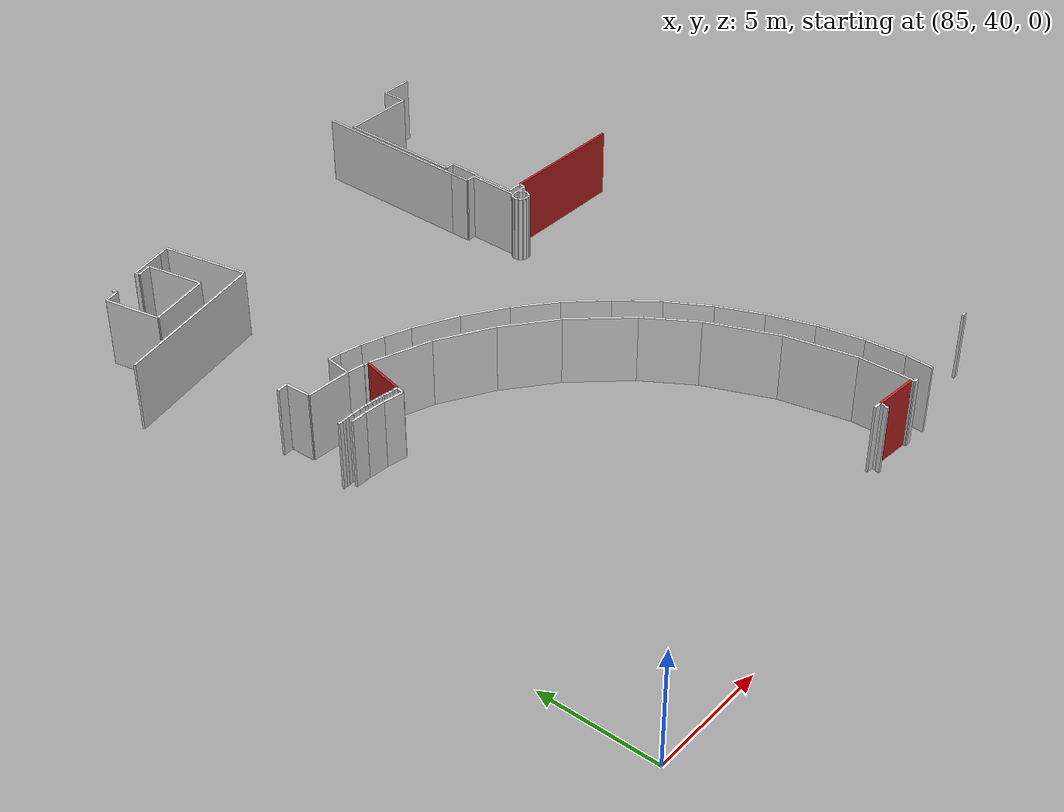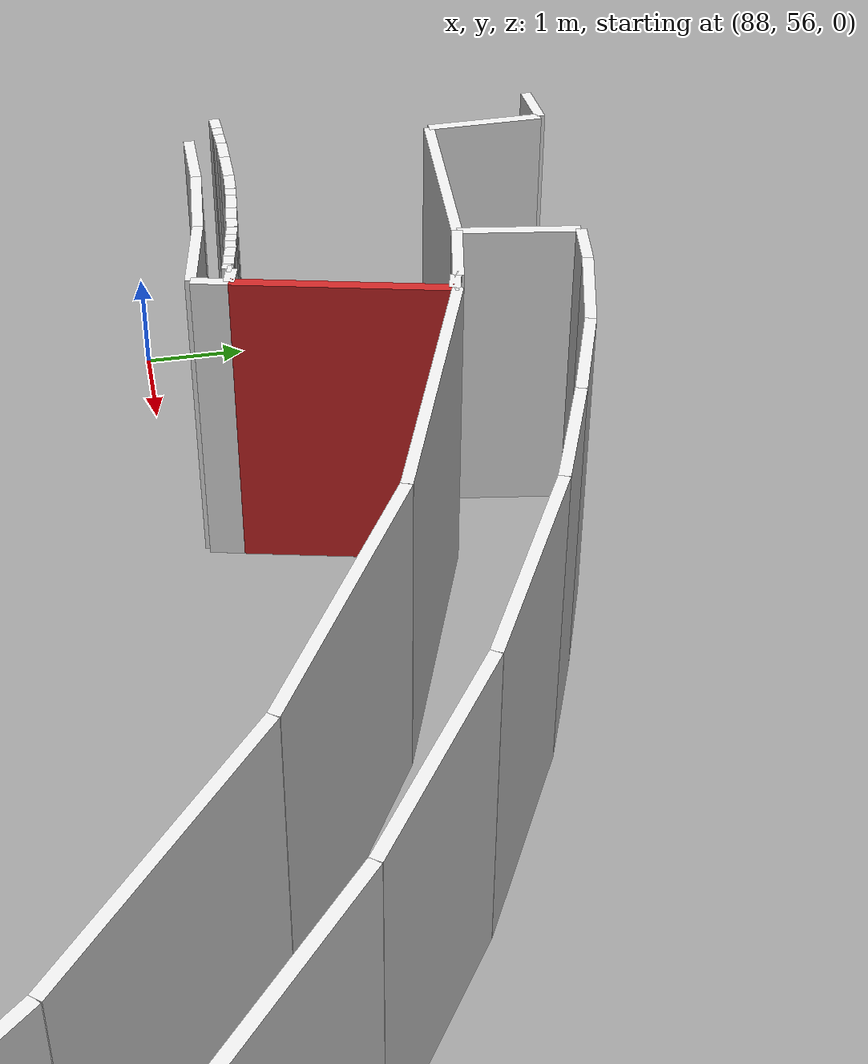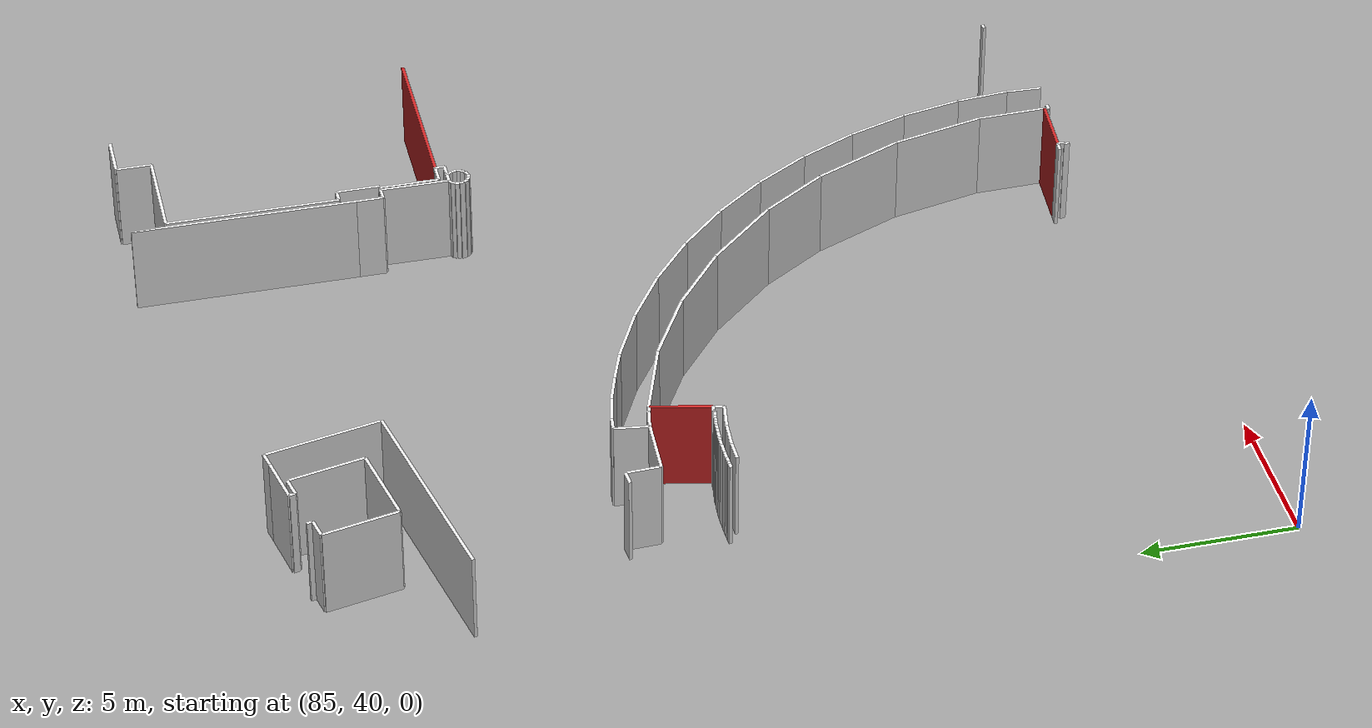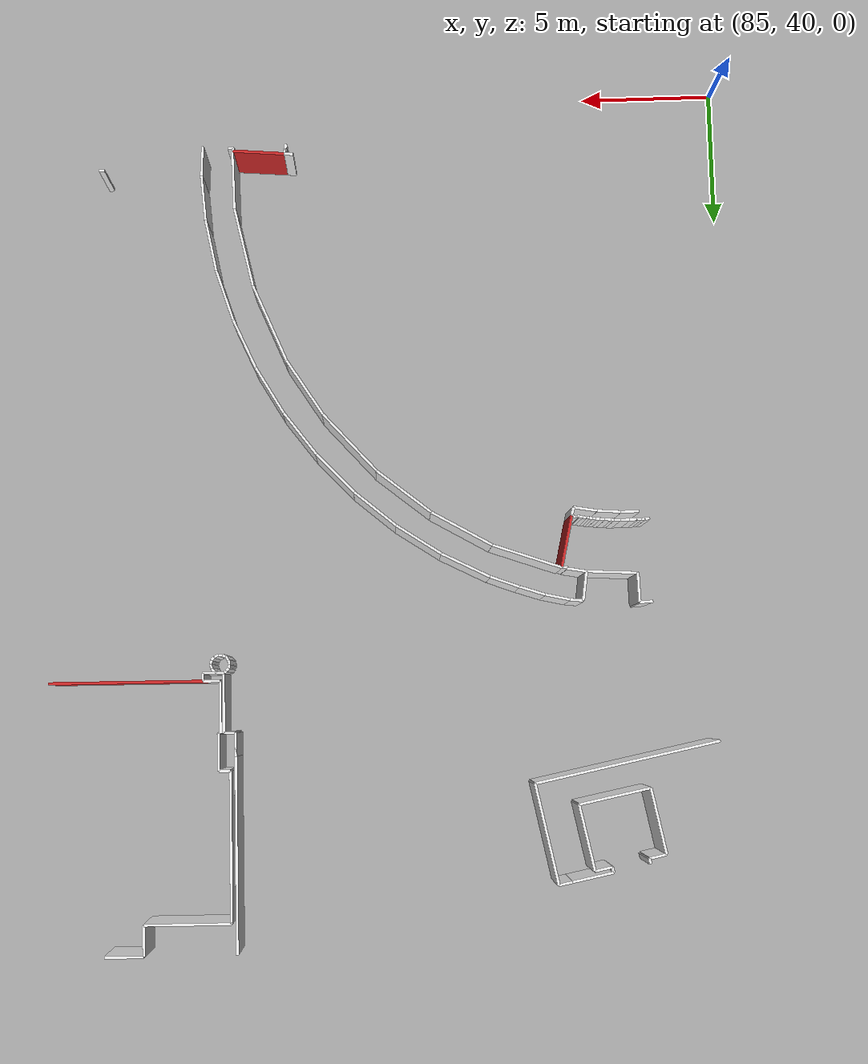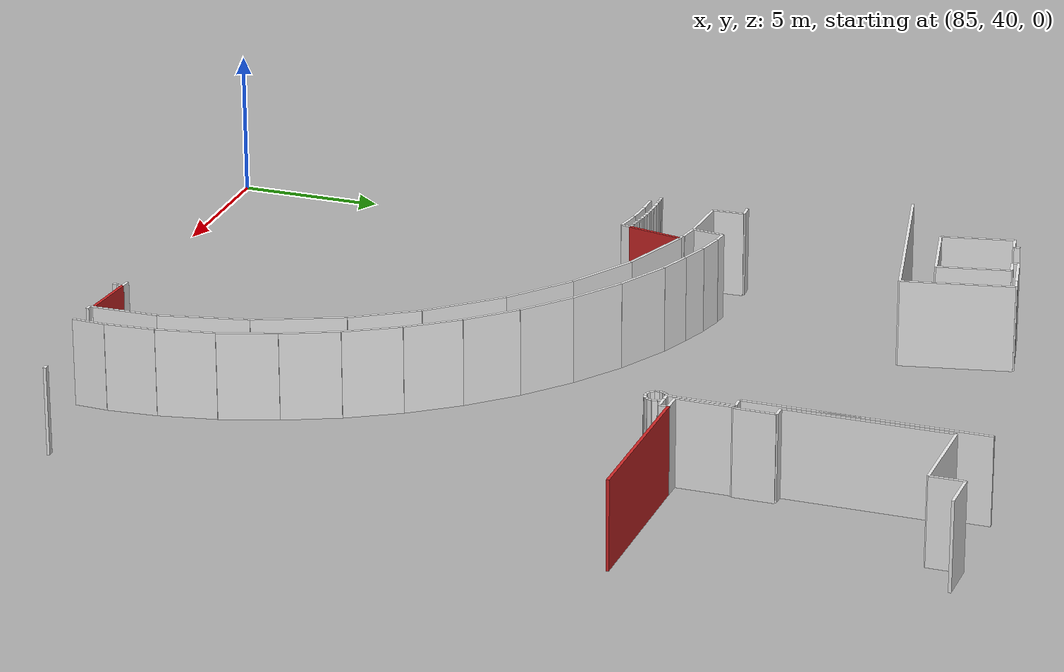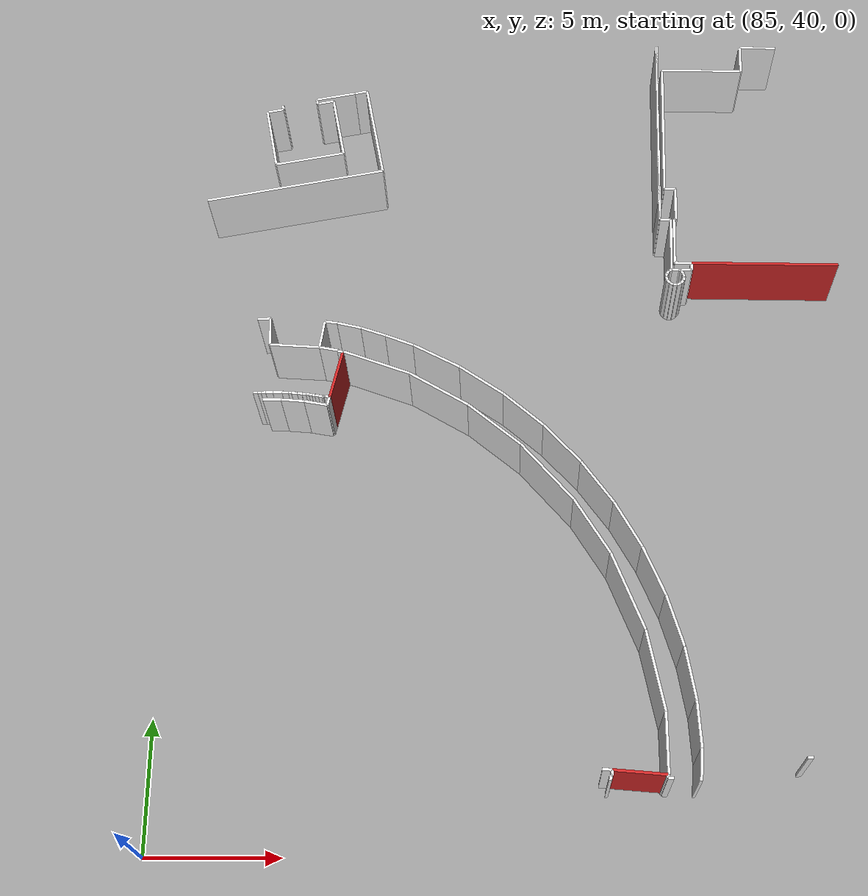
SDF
<sdf version="1.6">
 <world name="default">
  <model name="wall_108.0_62.3">
   <static>true</static>
   <pose>107.99499999999534 62.34499999997206 1.5 0 0 -0.012258580285916719</pose>
   <link name="link">
    <visual name="visual">
     <geometry><box><size>5.710429055644689 0.1 3</size></box></geometry>
     <material>
      <script><uri>file://media/materials/scripts/gazebo.material</uri><name>Gazebo/Red</name></script>
     </material>
    </visual>
   </link>
  </model>
  <model name="wall_102.6_42.5">
   <static>true</static>
   <pose>102.60500000001048 42.48999999999069 1.5 0 0 -0.08271241528552369</pose>
   <link name="link">
    <visual name="visual">
     <geometry><box><size>1.9366207682124321 0.1 3</size></box></geometry>
     <material>
      <script><uri>file://media/materials/scripts/gazebo.material</uri><name>Gazebo/Red</name></script>
     </material>
    </visual>
   </link>
  </model>
  <model name="wall_91.5_57.6">
   <static>true</static>
   <pose>91.49500000002445 57.58999999985099 1.5 0 0 -1.795651920405678</pose>
   <link name="link">
    <visual name="visual">
     <geometry><box><size>1.9285486770039746 0.1 3</size></box></geometry>
     <material>
      <script><uri>file://media/materials/scripts/gazebo.material</uri><name>Gazebo/Red</name></script>
     </material>
    </visual>
   </link>
  </model>
  <model name="wall_108.2_72.3">
   <static>true</static>
   <pose>108.21499999999651 72.34000000008382 1.5 0 0 3.127800424740227</pose>
   <link name="link">
    <visual name="visual">
     <geometry><box><size>1.4501379244866694 0.1 3</size></box></geometry>
     <material>
      <script><uri>file://media/materials/scripts/gazebo.material</uri><name>Gazebo/White</name></script>
     </material>
    </visual>
   </link>
  </model>
  <model name="wall_107.5_71.8">
   <static>true</static>
   <pose>107.48499999998603 71.78000000002794 1.5 0 0 -1.579568031646505</pose>
   <link name="link">
    <visual name="visual">
     <geometry><box><size>1.1400438589359028 0.1 3</size></box></geometry>
     <material>
      <script><uri>file://media/materials/scripts/gazebo.material</uri><name>Gazebo/White</name></script>
     </material>
    </visual>
   </link>
  </model>
  <model name="wall_105.9_71.2">
   <static>true</static>
   <pose>105.875 71.22999999998137 1.5 0 0 3.1291322393040306</pose>
   <link name="link">
    <visual name="visual">
     <geometry><box><size>3.2102492114731245 0.1 3</size></box></geometry>
     <material>
      <script><uri>file://media/materials/scripts/gazebo.material</uri><name>Gazebo/White</name></script>
     </material>
    </visual>
   </link>
  </model>
  <model name="wall_104.2_68.5">
   <static>true</static>
   <pose>104.23000000001048 68.47500000009313 1.5 0 0 -1.585209743017202</pose>
   <link name="link">
    <visual name="visual">
     <geometry><box><size>5.550576546444078 0.1 3</size></box></geometry>
     <material>
      <script><uri>file://media/materials/scripts/gazebo.material</uri><name>Gazebo/White</name></script>
     </material>
    </visual>
   </link>
  </model>
  <model name="wall_104.4_65.7">
   <static>true</static>
   <pose>104.40499999999884 65.69500000006519 1.5 0 0 -0.023251623373661365</pose>
   <link name="link">
    <visual name="visual">
     <geometry><box><size>0.430116263350778 0.1 3</size></box></geometry>
     <material>
      <script><uri>file://media/materials/scripts/gazebo.material</uri><name>Gazebo/White</name></script>
     </material>
    </visual>
   </link>
  </model>
  <model name="wall_104.6_65.0">
   <static>true</static>
   <pose>104.60999999998603 64.99499999987893 1.5 0 0 -1.5851838231958704</pose>
   <link name="link">
    <visual name="visual">
     <geometry><box><size>1.390143877576424 0.1 3</size></box></geometry>
     <material>
      <script><uri>file://media/materials/scripts/gazebo.material</uri><name>Gazebo/White</name></script>
     </material>
    </visual>
   </link>
  </model>
  <model name="wall_104.6_64.3">
   <static>true</static>
   <pose>104.55999999999767 64.29999999981374 1.5 0 0 3.141592653589793</pose>
   <link name="link">
    <visual name="visual">
     <geometry><box><size>0.07999999995809048 0.1 3</size></box></geometry>
     <material>
      <script><uri>file://media/materials/scripts/gazebo.material</uri><name>Gazebo/White</name></script>
     </material>
    </visual>
   </link>
  </model>
  <model name="wall_104.5_63.3">
   <static>true</static>
   <pose>104.50500000000466 63.34499999997206 1.5 0 0 -1.5865018416432637</pose>
   <link name="link">
    <visual name="visual">
     <geometry><box><size>1.9102355872488803 0.1 3</size></box></geometry>
     <material>
      <script><uri>file://media/materials/scripts/gazebo.material</uri><name>Gazebo/White</name></script>
     </material>
    </visual>
   </link>
  </model>
  <model name="wall_104.8_62.4">
   <static>true</static>
   <pose>104.81500000000233 62.38500000000931 1.5 0 0 -0.015383402152485081</pose>
   <link name="link">
    <visual name="visual">
     <geometry><box><size>0.6500769185528055 0.1 3</size></box></geometry>
     <material>
      <script><uri>file://media/materials/scripts/gazebo.material</uri><name>Gazebo/White</name></script>
     </material>
    </visual>
   </link>
  </model>
  <model name="wall_101.6_42.3">
   <static>true</static>
   <pose>101.5800000000163 42.29000000003725 1.5 0 0 1.4601391053370611</pose>
   <link name="link">
    <visual name="visual">
     <geometry><box><size>0.18110770246860486 0.1 3</size></box></geometry>
     <material>
      <script><uri>file://media/materials/scripts/gazebo.material</uri><name>Gazebo/White</name></script>
     </material>
    </visual>
   </link>
  </model>
  <model name="wall_101.6_42.4">
   <static>true</static>
   <pose>101.61000000001513 42.375 1.5 0 0 -0.24497865799089408</pose>
   <link name="link">
    <visual name="visual">
     <geometry><box><size>0.04123105618163657 0.1 3</size></box></geometry>
     <material>
      <script><uri>file://media/materials/scripts/gazebo.material</uri><name>Gazebo/White</name></script>
     </material>
    </visual>
   </link>
  </model>
  <model name="wall_101.6_42.5">
   <static>true</static>
   <pose>101.63500000000931 42.46999999997206 1.5 0 0 1.520837930956829</pose>
   <link name="link">
    <visual name="visual">
     <geometry><box><size>0.20024984366642476 0.1 3</size></box></geometry>
     <material>
      <script><uri>file://media/materials/scripts/gazebo.material</uri><name>Gazebo/White</name></script>
     </material>
    </visual>
   </link>
  </model>
  <model name="wall_103.6_42.4">
   <static>true</static>
   <pose>103.56500000000233 42.35000000009313 1.5 0 0 -1.6539375586833378</pose>
   <link name="link">
    <visual name="visual">
     <geometry><box><size>0.12041594590006904 0.1 3</size></box></geometry>
     <material>
      <script><uri>file://media/materials/scripts/gazebo.material</uri><name>Gazebo/White</name></script>
     </material>
    </visual>
   </link>
  </model>
  <model name="wall_103.7_42.3">
   <static>true</static>
   <pose>103.66500000000815 42.28499999991618 1.5 0 0 -0.0475831044226998</pose>
   <link name="link">
    <visual name="visual">
     <geometry><box><size>0.21023796044873502 0.1 3</size></box></geometry>
     <material>
      <script><uri>file://media/materials/scripts/gazebo.material</uri><name>Gazebo/White</name></script>
     </material>
    </visual>
   </link>
  </model>
  <model name="wall_91.1_56.7">
   <static>true</static>
   <pose>91.07500000001164 56.68000000016764 1.5 0 0 1.3258176636680326</pose>
   <link name="link">
    <visual name="visual">
     <geometry><box><size>0.04123105629457602 0.1 3</size></box></geometry>
     <material>
      <script><uri>file://media/materials/scripts/gazebo.material</uri><name>Gazebo/White</name></script>
     </material>
    </visual>
   </link>
  </model>
  <model name="wall_91.2_56.7">
   <static>true</static>
   <pose>91.18000000002212 56.675000000046566 1.5 0 0 -0.24497866442797658</pose>
   <link name="link">
    <visual name="visual">
     <geometry><box><size>0.20615528135994066 0.1 3</size></box></geometry>
     <material>
      <script><uri>file://media/materials/scripts/gazebo.material</uri><name>Gazebo/White</name></script>
     </material>
    </visual>
   </link>
  </model>
  <model name="wall_91.6_58.6">
   <static>true</static>
   <pose>91.61000000001513 58.55499999993481 1.5 0 0 2.896613989161817</pose>
   <link name="link">
    <visual name="visual">
     <geometry><box><size>0.20615528135994066 0.1 3</size></box></geometry>
     <material>
      <script><uri>file://media/materials/scripts/gazebo.material</uri><name>Gazebo/White</name></script>
     </material>
    </visual>
   </link>
  </model>
  <model name="wall_91.5_58.6">
   <static>true</static>
   <pose>91.51500000001397 58.59000000008382 1.5 0 0 1.1071487177940904</pose>
   <link name="link">
    <visual name="visual">
     <geometry><box><size>0.022360679795822902 0.1 3</size></box></geometry>
     <material>
      <script><uri>file://media/materials/scripts/gazebo.material</uri><name>Gazebo/White</name></script>
     </material>
    </visual>
   </link>
  </model>
  <model name="wall_91.2_58.7">
   <static>true</static>
   <pose>91.16500000000815 58.66500000003725 1.5 0 0 2.960499997216104</pose>
   <link name="link">
    <visual name="visual">
     <geometry><box><size>0.7218032973052274 0.1 3</size></box></geometry>
     <material>
      <script><uri>file://media/materials/scripts/gazebo.material</uri><name>Gazebo/White</name></script>
     </material>
    </visual>
   </link>
  </model>
  <model name="wall_89.9_58.8">
   <static>true</static>
   <pose>89.85999999998603 58.78499999991618 1.5 0 0 3.083762470913302</pose>
   <link name="link">
    <visual name="visual">
     <geometry><box><size>1.90318154679468 0.1 3</size></box></geometry>
     <material>
      <script><uri>file://media/materials/scripts/gazebo.material</uri><name>Gazebo/White</name></script>
     </material>
    </visual>
   </link>
  </model>
  <model name="wall_88.5_56.8">
   <static>true</static>
   <pose>88.47000000000116 56.83499999996275 1.5 0 0 0.05549850400992342</pose>
   <link name="link">
    <visual name="visual">
     <geometry><box><size>0.18027756375382678 0.1 3</size></box></geometry>
     <material>
      <script><uri>file://media/materials/scripts/gazebo.material</uri><name>Gazebo/White</name></script>
     </material>
    </visual>
   </link>
  </model>
  <model name="wall_88.6_56.8">
   <static>true</static>
   <pose>88.625 56.83999999985099 1.5 0 0 0.0</pose>
   <link name="link">
    <visual name="visual">
     <geometry><box><size>0.1300000000046566 0.1 3</size></box></geometry>
     <material>
      <script><uri>file://media/materials/scripts/gazebo.material</uri><name>Gazebo/White</name></script>
     </material>
    </visual>
   </link>
  </model>
  <model name="wall_88.8_56.8">
   <static>true</static>
   <pose>88.77499999999418 56.84499999997206 1.5 0 0 0.0587558241408068</pose>
   <link name="link">
    <visual name="visual">
     <geometry><box><size>0.17029386365721316 0.1 3</size></box></geometry>
     <material>
      <script><uri>file://media/materials/scripts/gazebo.material</uri><name>Gazebo/White</name></script>
     </material>
    </visual>
   </link>
  </model>
  <model name="wall_89.0_56.9">
   <static>true</static>
   <pose>88.99499999999534 56.85000000009313 1.5 0 0 0.0</pose>
   <link name="link">
    <visual name="visual">
     <geometry><box><size>0.27000000001862645 0.1 3</size></box></geometry>
     <material>
      <script><uri>file://media/materials/scripts/gazebo.material</uri><name>Gazebo/White</name></script>
     </material>
    </visual>
   </link>
  </model>
  <model name="wall_89.3_56.9">
   <static>true</static>
   <pose>89.30499999999302 56.85000000009313 1.5 0 0 0.0</pose>
   <link name="link">
    <visual name="visual">
     <geometry><box><size>0.34999999997671694 0.1 3</size></box></geometry>
     <material>
      <script><uri>file://media/materials/scripts/gazebo.material</uri><name>Gazebo/White</name></script>
     </material>
    </visual>
   </link>
  </model>
  <model name="wall_89.6_56.8">
   <static>true</static>
   <pose>89.59999999997672 56.84499999997206 1.5 0 0 -0.04164258010738671</pose>
   <link name="link">
    <visual name="visual">
     <geometry><box><size>0.24020824299006172 0.1 3</size></box></geometry>
     <material>
      <script><uri>file://media/materials/scripts/gazebo.material</uri><name>Gazebo/White</name></script>
     </material>
    </visual>
   </link>
  </model>
  <model name="wall_89.8_56.8">
   <static>true</static>
   <pose>89.77999999999884 56.83499999996275 1.5 0 0 -0.08314123000171016</pose>
   <link name="link">
    <visual name="visual">
     <geometry><box><size>0.12041594582272691 0.1 3</size></box></geometry>
     <material>
      <script><uri>file://media/materials/scripts/gazebo.material</uri><name>Gazebo/White</name></script>
     </material>
    </visual>
   </link>
  </model>
  <model name="wall_90.0_56.8">
   <static>true</static>
   <pose>89.95000000001164 56.82000000006519 1.5 0 0 -0.0906598872961675</pose>
   <link name="link">
    <visual name="visual">
     <geometry><box><size>0.22090722031760665 0.1 3</size></box></geometry>
     <material>
      <script><uri>file://media/materials/scripts/gazebo.material</uri><name>Gazebo/White</name></script>
     </material>
    </visual>
   </link>
  </model>
  <model name="wall_90.1_56.8">
   <static>true</static>
   <pose>90.14999999999418 56.800000000046566 1.5 0 0 -0.11065722128037307</pose>
   <link name="link">
    <visual name="visual">
     <geometry><box><size>0.1811077027578631 0.1 3</size></box></geometry>
     <material>
      <script><uri>file://media/materials/scripts/gazebo.material</uri><name>Gazebo/White</name></script>
     </material>
    </visual>
   </link>
  </model>
  <model name="wall_90.3_56.8">
   <static>true</static>
   <pose>90.31500000000233 56.78499999991618 1.5 0 0 -0.06656816537267114</pose>
   <link name="link">
    <visual name="visual">
     <geometry><box><size>0.15033296382306774 0.1 3</size></box></geometry>
     <material>
      <script><uri>file://media/materials/scripts/gazebo.material</uri><name>Gazebo/White</name></script>
     </material>
    </visual>
   </link>
  </model>
  <model name="wall_90.5_56.8">
   <static>true</static>
   <pose>90.45000000001164 56.769999999785796 1.5 0 0 -0.16514867757194485</pose>
   <link name="link">
    <visual name="visual">
     <geometry><box><size>0.1216552506044333 0.1 3</size></box></geometry>
     <material>
      <script><uri>file://media/materials/scripts/gazebo.material</uri><name>Gazebo/White</name></script>
     </material>
    </visual>
   </link>
  </model>
  <model name="wall_90.6_56.8">
   <static>true</static>
   <pose>90.56500000000233 56.75 1.5 0 0 -0.17985349588092345</pose>
   <link name="link">
    <visual name="visual">
     <geometry><box><size>0.11180339878127696 0.1 3</size></box></geometry>
     <material>
      <script><uri>file://media/materials/scripts/gazebo.material</uri><name>Gazebo/White</name></script>
     </material>
    </visual>
   </link>
  </model>
  <model name="wall_90.7_56.7">
   <static>true</static>
   <pose>90.67499999998836 56.735000000102445 1.5 0 0 -0.0906598893954602</pose>
   <link name="link">
    <visual name="visual">
     <geometry><box><size>0.11045361017988281 0.1 3</size></box></geometry>
     <material>
      <script><uri>file://media/materials/scripts/gazebo.material</uri><name>Gazebo/White</name></script>
     </material>
    </visual>
   </link>
  </model>
  <model name="wall_90.8_56.7">
   <static>true</static>
   <pose>90.79999999998836 56.71500000008382 1.5 0 0 -0.2110933318030475</pose>
   <link name="link">
    <visual name="visual">
     <geometry><box><size>0.14317821060349267 0.1 3</size></box></geometry>
     <material>
      <script><uri>file://media/materials/scripts/gazebo.material</uri><name>Gazebo/White</name></script>
     </material>
    </visual>
   </link>
  </model>
  <model name="wall_90.9_56.7">
   <static>true</static>
   <pose>90.93499999999767 56.69000000017695 1.5 0 0 -0.15264932852984936</pose>
   <link name="link">
    <visual name="visual">
     <geometry><box><size>0.13152946438709381 0.1 3</size></box></geometry>
     <material>
      <script><uri>file://media/materials/scripts/gazebo.material</uri><name>Gazebo/White</name></script>
     </material>
    </visual>
   </link>
  </model>
  <model name="wall_91.0_56.7">
   <static>true</static>
   <pose>91.03500000000349 56.670000000158325 1.5 0 0 -0.2782996592247629</pose>
   <link name="link">
    <visual name="visual">
     <geometry><box><size>0.07280109890463843 0.1 3</size></box></geometry>
     <material>
      <script><uri>file://media/materials/scripts/gazebo.material</uri><name>Gazebo/White</name></script>
     </material>
    </visual>
   </link>
  </model>
  <model name="wall_89.1_56.5">
   <static>true</static>
   <pose>89.11000000001513 56.549999999813735 1.5 0 0 0.0</pose>
   <link name="link">
    <visual name="visual">
     <geometry><box><size>0.6799999999930151 0.1 3</size></box></geometry>
     <material>
      <script><uri>file://media/materials/scripts/gazebo.material</uri><name>Gazebo/White</name></script>
     </material>
    </visual>
   </link>
  </model>
  <model name="wall_89.9_56.5">
   <static>true</static>
   <pose>89.89000000001397 56.514999999897555 1.5 0 0 -0.07937831436985521</pose>
   <link name="link">
    <visual name="visual">
     <geometry><box><size>0.8827797007094841 0.1 3</size></box></geometry>
     <material>
      <script><uri>file://media/materials/scripts/gazebo.material</uri><name>Gazebo/White</name></script>
     </material>
    </visual>
   </link>
  </model>
  <model name="wall_90.8_56.4">
   <static>true</static>
   <pose>90.76500000001397 56.40500000002794 1.5 0 0 -0.17073521137222075</pose>
   <link name="link">
    <visual name="visual">
     <geometry><box><size>0.882836338153317 0.1 3</size></box></geometry>
     <material>
      <script><uri>file://media/materials/scripts/gazebo.material</uri><name>Gazebo/White</name></script>
     </material>
    </visual>
   </link>
  </model>
  <model name="wall_91.2_56.5">
   <static>true</static>
   <pose>91.24000000001979 56.48999999999069 1.5 0 0 1.3258176634968335</pose>
   <link name="link">
    <visual name="visual">
     <geometry><box><size>0.3298484498907329 0.1 3</size></box></geometry>
     <material>
      <script><uri>file://media/materials/scripts/gazebo.material</uri><name>Gazebo/White</name></script>
     </material>
    </visual>
   </link>
  </model>
  <model name="wall_91.7_58.5">
   <static>true</static>
   <pose>91.71000000002095 58.544999999925494 1.5 0 0 1.5707963267948966</pose>
   <link name="link">
    <visual name="visual">
     <geometry><box><size>0.03000000026077032 0.1 3</size></box></geometry>
     <material>
      <script><uri>file://media/materials/scripts/gazebo.material</uri><name>Gazebo/White</name></script>
     </material>
    </visual>
   </link>
  </model>
  <model name="wall_93.0_58.1">
   <static>true</static>
   <pose>92.99000000001979 58.10499999998137 1.5 0 0 -0.34153842534850654</pose>
   <link name="link">
    <visual name="visual">
     <geometry><box><size>2.7169284127962 0.1 3</size></box></geometry>
     <material>
      <script><uri>file://media/materials/scripts/gazebo.material</uri><name>Gazebo/White</name></script>
     </material>
    </visual>
   </link>
  </model>
  <model name="wall_95.4_57.0">
   <static>true</static>
   <pose>95.38500000000931 57.00499999988824 1.5 0 0 -0.5244421648917321</pose>
   <link name="link">
    <visual name="visual">
     <geometry><box><size>2.576237566687715 0.1 3</size></box></geometry>
     <material>
      <script><uri>file://media/materials/scripts/gazebo.material</uri><name>Gazebo/White</name></script>
     </material>
    </visual>
   </link>
  </model>
  <model name="wall_97.5_55.6">
   <static>true</static>
   <pose>97.49499999999534 55.55499999993481 1.5 0 0 -0.6802320401382534</pose>
   <link name="link">
    <visual name="visual">
     <geometry><box><size>2.559726547806053 0.1 3</size></box></geometry>
     <material>
      <script><uri>file://media/materials/scripts/gazebo.material</uri><name>Gazebo/White</name></script>
     </material>
    </visual>
   </link>
  </model>
  <model name="wall_99.5_53.7">
   <static>true</static>
   <pose>99.46499999999651 53.65500000002794 1.5 0 0 -0.8433043686299182</pose>
   <link name="link">
    <visual name="visual">
     <geometry><box><size>2.932336951954985 0.1 3</size></box></geometry>
     <material>
      <script><uri>file://media/materials/scripts/gazebo.material</uri><name>Gazebo/White</name></script>
     </material>
    </visual>
   </link>
  </model>
  <model name="wall_101.1_51.5">
   <static>true</static>
   <pose>101.09500000000116 51.5250000001397 1.5 0 0 -1.0065718003034507</pose>
   <link name="link">
    <visual name="visual">
     <geometry><box><size>2.449693858281046 0.1 3</size></box></geometry>
     <material>
      <script><uri>file://media/materials/scripts/gazebo.material</uri><name>Gazebo/White</name></script>
     </material>
    </visual>
   </link>
  </model>
  <model name="wall_102.3_49.1">
   <static>true</static>
   <pose>102.34500000000116 49.050000000046566 1.5 0 0 -1.1789674300212807</pose>
   <link name="link">
    <visual name="visual">
     <geometry><box><size>3.1161675182897373 0.1 3</size></box></geometry>
     <material>
      <script><uri>file://media/materials/scripts/gazebo.material</uri><name>Gazebo/White</name></script>
     </material>
    </visual>
   </link>
  </model>
  <model name="wall_103.3_46.1">
   <static>true</static>
   <pose>103.25500000000466 46.125 1.5 0 0 -1.361773383969309</pose>
   <link name="link">
    <visual name="visual">
     <geometry><box><size>3.036083002563812 0.1 3</size></box></geometry>
     <material>
      <script><uri>file://media/materials/scripts/gazebo.material</uri><name>Gazebo/White</name></script>
     </material>
    </visual>
   </link>
  </model>
  <model name="wall_103.6_43.5">
   <static>true</static>
   <pose>103.58499999999185 43.5250000001397 1.5 0 0 -1.5573442234956494</pose>
   <link name="link">
    <visual name="visual">
     <geometry><box><size>2.230201784573564 0.1 3</size></box></geometry>
     <material>
      <script><uri>file://media/materials/scripts/gazebo.material</uri><name>Gazebo/White</name></script>
     </material>
    </visual>
   </link>
  </model>
  <model name="wall_101.5_42.6">
   <static>true</static>
   <pose>101.47000000000116 42.58499999996275 1.5 0 0 3.053585279307601</pose>
   <link name="link">
    <visual name="visual">
     <geometry><box><size>0.3413209633659526 0.1 3</size></box></geometry>
     <material>
      <script><uri>file://media/materials/scripts/gazebo.material</uri><name>Gazebo/White</name></script>
     </material>
    </visual>
   </link>
  </model>
  <model name="wall_88.5_68.0">
   <static>true</static>
   <pose>88.51000000000931 67.99499999987893 1.5 0 0 -1.3757760594104678</pose>
   <link name="link">
    <visual name="visual">
     <geometry><box><size>2.4769537744570123 0.1 3</size></box></geometry>
     <material>
      <script><uri>file://media/materials/scripts/gazebo.material</uri><name>Gazebo/White</name></script>
     </material>
    </visual>
   </link>
  </model>
  <model name="wall_90.1_67.0">
   <static>true</static>
   <pose>90.0799999999872 67.03999999980442 1.5 0 0 0.19305405312718568</pose>
   <link name="link">
    <visual name="visual">
     <geometry><box><size>2.710350530813887 0.1 3</size></box></geometry>
     <material>
      <script><uri>file://media/materials/scripts/gazebo.material</uri><name>Gazebo/White</name></script>
     </material>
    </visual>
   </link>
  </model>
  <model name="wall_91.2_68.5">
   <static>true</static>
   <pose>91.16499999997905 68.52000000001863 1.5 0 0 1.7689799085101925</pose>
   <link name="link">
    <visual name="visual">
     <geometry><box><size>2.4887145280225713 0.1 3</size></box></geometry>
     <material>
      <script><uri>file://media/materials/scripts/gazebo.material</uri><name>Gazebo/White</name></script>
     </material>
    </visual>
   </link>
  </model>
  <model name="wall_90.6_69.7">
   <static>true</static>
   <pose>90.60000000000582 69.67500000004657 1.5 0 0 -2.9411940992193695</pose>
   <link name="link">
    <visual name="visual">
     <geometry><box><size>0.6530696747173231 0.1 3</size></box></geometry>
     <material>
      <script><uri>file://media/materials/scripts/gazebo.material</uri><name>Gazebo/White</name></script>
     </material>
    </visual>
   </link>
  </model>
  <model name="wall_88.6_69.3">
   <static>true</static>
   <pose>88.58999999999651 69.27499999990687 1.5 0 0 -2.9411940999181345</pose>
   <link name="link">
    <visual name="visual">
     <geometry><box><size>0.6530696746246286 0.1 3</size></box></geometry>
     <material>
      <script><uri>file://media/materials/scripts/gazebo.material</uri><name>Gazebo/White</name></script>
     </material>
    </visual>
   </link>
  </model>
  <model name="wall_108.6_43.0">
   <static>true</static>
   <pose>108.55000000001746 43.014999999897555 1.5 0 0 -3.0916342566630535</pose>
   <link name="link">
    <visual name="visual">
     <geometry><box><size>0.20024984396872697 0.1 3</size></box></geometry>
     <material>
      <script><uri>file://media/materials/scripts/gazebo.material</uri><name>Gazebo/White</name></script>
     </material>
    </visual>
   </link>
  </model>
  <model name="wall_104.8_42.8">
   <static>true</static>
   <pose>104.75499999997555 42.77000000001863 1.5 0 0 1.509469815630436</pose>
   <link name="link">
    <visual name="visual">
     <geometry><box><size>1.1421471005245114 0.1 3</size></box></geometry>
     <material>
      <script><uri>file://media/materials/scripts/gazebo.material</uri><name>Gazebo/White</name></script>
     </material>
    </visual>
   </link>
  </model>
  <model name="wall_104.7_44.2">
   <static>true</static>
   <pose>104.72999999998137 44.18999999994412 1.5 0 0 1.6412676713632708</pose>
   <link name="link">
    <visual name="visual">
     <geometry><box><size>1.7042300316072891 0.1 3</size></box></geometry>
     <material>
      <script><uri>file://media/materials/scripts/gazebo.material</uri><name>Gazebo/White</name></script>
     </material>
    </visual>
   </link>
  </model>
  <model name="wall_104.5_46.0">
   <static>true</static>
   <pose>104.48999999999069 46.015000000130385 1.5 0 0 1.7533561799018222</pose>
   <link name="link">
    <visual name="visual">
     <geometry><box><size>1.982952344539922 0.1 3</size></box></geometry>
     <material>
      <script><uri>file://media/materials/scripts/gazebo.material</uri><name>Gazebo/White</name></script>
     </material>
    </visual>
   </link>
  </model>
  <model name="wall_104.0_47.9">
   <static>true</static>
   <pose>104.01000000000931 47.94500000006519 1.5 0 0 1.8751710629953546</pose>
   <link name="link">
    <visual name="visual">
     <geometry><box><size>2.002023975571336 0.1 3</size></box></geometry>
     <material>
      <script><uri>file://media/materials/scripts/gazebo.material</uri><name>Gazebo/White</name></script>
     </material>
    </visual>
   </link>
  </model>
  <model name="wall_103.3_49.8">
   <static>true</static>
   <pose>103.30999999999767 49.81499999994412 1.5 0 0 1.9829200711588533</pose>
   <link name="link">
    <visual name="visual">
     <geometry><box><size>1.9972230722548738 0.1 3</size></box></geometry>
     <material>
      <script><uri>file://media/materials/scripts/gazebo.material</uri><name>Gazebo/White</name></script>
     </material>
    </visual>
   </link>
  </model>
  <model name="wall_102.4_51.6">
   <static>true</static>
   <pose>102.40999999997439 51.59499999997206 1.5 0 0 2.0949082599421773</pose>
   <link name="link">
    <visual name="visual">
     <geometry><box><size>1.9982242116278024 0.1 3</size></box></geometry>
     <material>
      <script><uri>file://media/materials/scripts/gazebo.material</uri><name>Gazebo/White</name></script>
     </material>
    </visual>
   </link>
  </model>
  <model name="wall_101.3_53.3">
   <static>true</static>
   <pose>101.31499999997322 53.26000000000931 1.5 0 0 2.210285420979203</pose>
   <link name="link">
    <visual name="visual">
     <geometry><box><size>1.9940160481559732 0.1 3</size></box></geometry>
     <material>
      <script><uri>file://media/materials/scripts/gazebo.material</uri><name>Gazebo/White</name></script>
     </material>
    </visual>
   </link>
  </model>
  <model name="wall_100.0_54.8">
   <static>true</static>
   <pose>100.03499999997439 54.79000000003725 1.5 0 0 2.3244030848489046</pose>
   <link name="link">
    <visual name="visual">
     <geometry><box><size>2.00212387226127 0.1 3</size></box></geometry>
     <material>
      <script><uri>file://media/materials/scripts/gazebo.material</uri><name>Gazebo/White</name></script>
     </material>
    </visual>
   </link>
  </model>
  <model name="wall_98.6_56.2">
   <static>true</static>
   <pose>98.58999999999651 56.16500000003725 1.5 0 0 2.4378629690684206</pose>
   <link name="link">
    <visual name="visual">
     <geometry><box><size>1.9936148073225644 0.1 3</size></box></geometry>
     <material>
      <script><uri>file://media/materials/scripts/gazebo.material</uri><name>Gazebo/White</name></script>
     </material>
    </visual>
   </link>
  </model>
  <model name="wall_97.0_57.4">
   <static>true</static>
   <pose>97.0 57.36499999999069 1.5 0 0 2.552201162109747</pose>
   <link name="link">
    <visual name="visual">
     <geometry><box><size>1.9969226324068652 0.1 3</size></box></geometry>
     <material>
      <script><uri>file://media/materials/scripts/gazebo.material</uri><name>Gazebo/White</name></script>
     </material>
    </visual>
   </link>
  </model>
  <model name="wall_95.3_58.4">
   <static>true</static>
   <pose>95.27999999999884 58.375 1.5 0 0 2.668996737498951</pose>
   <link name="link">
    <visual name="visual">
     <geometry><box><size>1.9991248085508437 0.1 3</size></box></geometry>
     <material>
      <script><uri>file://media/materials/scripts/gazebo.material</uri><name>Gazebo/White</name></script>
     </material>
    </visual>
   </link>
  </model>
  <model name="wall_93.9_59.0">
   <static>true</static>
   <pose>93.85500000001048 59.03000000002794 1.5 0 0 2.783846573203131</pose>
   <link name="link">
    <visual name="visual">
     <geometry><box><size>1.142322196204049 0.1 3</size></box></geometry>
     <material>
      <script><uri>file://media/materials/scripts/gazebo.material</uri><name>Gazebo/White</name></script>
     </material>
    </visual>
   </link>
  </model>
  <model name="wall_92.8_59.4">
   <static>true</static>
   <pose>92.84500000000116 59.389999999897555 1.5 0 0 2.816687535686861</pose>
   <link name="link">
    <visual name="visual">
     <geometry><box><size>1.0024470060381399 0.1 3</size></box></geometry>
     <material>
      <script><uri>file://media/materials/scripts/gazebo.material</uri><name>Gazebo/White</name></script>
     </material>
    </visual>
   </link>
  </model>
  <model name="wall_91.9_59.7">
   <static>true</static>
   <pose>91.91000000000349 59.65499999979511 1.5 0 0 2.917176644587291</pose>
   <link name="link">
    <visual name="visual">
     <geometry><box><size>0.9436630754429067 0.1 3</size></box></geometry>
     <material>
      <script><uri>file://media/materials/scripts/gazebo.material</uri><name>Gazebo/White</name></script>
     </material>
    </visual>
   </link>
  </model>
  <model name="wall_91.2_59.8">
   <static>true</static>
   <pose>91.20999999999185 59.78999999980442 1.5 0 0 3.0172376589385563</pose>
   <link name="link">
    <visual name="visual">
     <geometry><box><size>0.4837354649441195 0.1 3</size></box></geometry>
     <material>
      <script><uri>file://media/materials/scripts/gazebo.material</uri><name>Gazebo/White</name></script>
     </material>
    </visual>
   </link>
  </model>
  <model name="wall_90.9_59.3">
   <static>true</static>
   <pose>90.88999999998487 59.27499999990687 1.5 0 0 -1.7165444534999768</pose>
   <link name="link">
    <visual name="visual">
     <geometry><box><size>1.1016805343051854 0.1 3</size></box></geometry>
     <material>
      <script><uri>file://media/materials/scripts/gazebo.material</uri><name>Gazebo/White</name></script>
     </material>
    </visual>
   </link>
  </model>
  <model name="wall_88.9_59.4">
   <static>true</static>
   <pose>88.89499999998952 59.389999999897555 1.5 0 0 1.5980622952206878</pose>
   <link name="link">
    <visual name="visual">
     <geometry><box><size>1.1004090149590173 0.1 3</size></box></geometry>
     <material>
      <script><uri>file://media/materials/scripts/gazebo.material</uri><name>Gazebo/White</name></script>
     </material>
    </visual>
   </link>
  </model>
  <model name="wall_88.6_59.9">
   <static>true</static>
   <pose>88.63500000000931 59.925000000046566 1.5 0 0 -3.080444491355916</pose>
   <link name="link">
    <visual name="visual">
     <geometry><box><size>0.4909175083235264 0.1 3</size></box></geometry>
     <material>
      <script><uri>file://media/materials/scripts/gazebo.material</uri><name>Gazebo/White</name></script>
     </material>
    </visual>
   </link>
  </model>
  <model name="wall_89.6_65.8">
   <static>true</static>
   <pose>89.55999999999767 65.81000000005588 1.5 0 0 0.19515842716344076</pose>
   <link name="link">
    <visual name="visual">
     <geometry><box><size>7.013130542131383 0.1 3</size></box></geometry>
     <material>
      <script><uri>file://media/materials/scripts/gazebo.material</uri><name>Gazebo/White</name></script>
     </material>
    </visual>
   </link>
  </model>
  <model name="wall_92.6_68.4">
   <static>true</static>
   <pose>92.63000000000466 68.35000000009313 1.5 0 0 1.767157760861028</pose>
   <link name="link">
    <visual name="visual">
     <geometry><box><size>3.7928880814026247 0.1 3</size></box></geometry>
     <material>
      <script><uri>file://media/materials/scripts/gazebo.material</uri><name>Gazebo/White</name></script>
     </material>
    </visual>
   </link>
  </model>
  <model name="wall_92.0_70.2">
   <static>true</static>
   <pose>92.01500000001397 70.15999999991618 1.5 0 0 -2.9402755450289626</pose>
   <link name="link">
    <visual name="visual">
     <geometry><box><size>0.5000999900114971 0.1 3</size></box></geometry>
     <material>
      <script><uri>file://media/materials/scripts/gazebo.material</uri><name>Gazebo/White</name></script>
     </material>
    </visual>
   </link>
  </model>
  <model name="wall_91.0_70.0">
   <static>true</static>
   <pose>91.00500000000466 69.95999999996275 1.5 0 0 -2.94797066085453</pose>
   <link name="link">
    <visual name="visual">
     <geometry><box><size>1.5591343752139315 0.1 3</size></box></geometry>
     <material>
      <script><uri>file://media/materials/scripts/gazebo.material</uri><name>Gazebo/White</name></script>
     </material>
    </visual>
   </link>
  </model>
  <model name="wall_90.3_69.7">
   <static>true</static>
   <pose>90.26000000000931 69.70999999996275 1.5 0 0 -1.373400766945016</pose>
   <link name="link">
    <visual name="visual">
     <geometry><box><size>0.20396078073366466 0.1 3</size></box></geometry>
     <material>
      <script><uri>file://media/materials/scripts/gazebo.material</uri><name>Gazebo/White</name></script>
     </material>
    </visual>
   </link>
  </model>
  <model name="wall_88.9_69.4">
   <static>true</static>
   <pose>88.88999999998487 69.43999999994412 1.5 0 0 1.7681918863649329</pose>
   <link name="link">
    <visual name="visual">
     <geometry><box><size>0.2039607807222492 0.1 3</size></box></geometry>
     <material>
      <script><uri>file://media/materials/scripts/gazebo.material</uri><name>Gazebo/White</name></script>
     </material>
    </visual>
   </link>
  </model>
  <model name="wall_104.0_68.8">
   <static>true</static>
   <pose>104.02999999999884 68.78500000014901 1.5 0 0 -1.5846650630720618</pose>
   <link name="link">
    <visual name="visual">
     <geometry><box><size>7.2106934478918046 0.1 3</size></box></geometry>
     <material>
      <script><uri>file://media/materials/scripts/gazebo.material</uri><name>Gazebo/White</name></script>
     </material>
    </visual>
   </link>
  </model>
  <model name="wall_104.0_64.7">
   <static>true</static>
   <pose>103.97499999997672 64.74500000011176 1.5 0 0 -1.5822900735191543</pose>
   <link name="link">
    <visual name="visual">
     <geometry><box><size>0.8700574694781066 0.1 3</size></box></geometry>
     <material>
      <script><uri>file://media/materials/scripts/gazebo.material</uri><name>Gazebo/White</name></script>
     </material>
    </visual>
   </link>
  </model>
  <model name="wall_104.2_64.3">
   <static>true</static>
   <pose>104.18499999999767 64.31000000005588 1.5 0 0 0.0</pose>
   <link name="link">
    <visual name="visual">
     <geometry><box><size>0.43000000005122274 0.1 3</size></box></geometry>
     <material>
      <script><uri>file://media/materials/scripts/gazebo.material</uri><name>Gazebo/White</name></script>
     </material>
    </visual>
   </link>
  </model>
  <model name="wall_104.4_63.2">
   <static>true</static>
   <pose>104.38000000000466 63.199999999953434 1.5 0 0 -1.5888123953640647</pose>
   <link name="link">
    <visual name="visual">
     <geometry><box><size>2.2203603313229805 0.1 3</size></box></geometry>
     <material>
      <script><uri>file://media/materials/scripts/gazebo.material</uri><name>Gazebo/White</name></script>
     </material>
    </visual>
   </link>
  </model>
  <model name="wall_104.3_62.1">
   <static>true</static>
   <pose>104.30499999999302 62.05999999982305 1.5 0 0 -2.642245931464764</pose>
   <link name="link">
    <visual name="visual">
     <geometry><box><size>0.12529964087591056 0.1 3</size></box></geometry>
     <material>
      <script><uri>file://media/materials/scripts/gazebo.material</uri><name>Gazebo/White</name></script>
     </material>
    </visual>
   </link>
  </model>
  <model name="wall_104.2_62.0">
   <static>true</static>
   <pose>104.20999999999185 61.9749999998603 1.5 0 0 -2.199592613871065</pose>
   <link name="link">
    <visual name="visual">
     <geometry><box><size>0.13601470499149335 0.1 3</size></box></geometry>
     <material>
      <script><uri>file://media/materials/scripts/gazebo.material</uri><name>Gazebo/White</name></script>
     </material>
    </visual>
   </link>
  </model>
  <model name="wall_104.2_61.9">
   <static>true</static>
   <pose>104.15499999999884 61.85499999998137 1.5 0 0 -1.7975951748160817</pose>
   <link name="link">
    <visual name="visual">
     <geometry><box><size>0.13341664052556057 0.1 3</size></box></geometry>
     <material>
      <script><uri>file://media/materials/scripts/gazebo.material</uri><name>Gazebo/White</name></script>
     </material>
    </visual>
   </link>
  </model>
  <model name="wall_104.2_61.7">
   <static>true</static>
   <pose>104.15499999999884 61.70999999996275 1.5 0 0 -1.3854483771506443</pose>
   <link name="link">
    <visual name="visual">
     <geometry><box><size>0.16278820610187839 0.1 3</size></box></geometry>
     <material>
      <script><uri>file://media/materials/scripts/gazebo.material</uri><name>Gazebo/White</name></script>
     </material>
    </visual>
   </link>
  </model>
  <model name="wall_104.2_61.6">
   <static>true</static>
   <pose>104.22000000000116 61.56499999994412 1.5 0 0 -0.9151006999691199</pose>
   <link name="link">
    <visual name="visual">
     <geometry><box><size>0.16401219460127853 0.1 3</size></box></geometry>
     <material>
      <script><uri>file://media/materials/scripts/gazebo.material</uri><name>Gazebo/White</name></script>
     </material>
    </visual>
   </link>
  </model>
  <model name="wall_104.3_61.5">
   <static>true</static>
   <pose>104.33500000002095 61.46999999997206 1.5 0 0 -0.4324077759112656</pose>
   <link name="link">
    <visual name="visual">
     <geometry><box><size>0.14317821066040826 0.1 3</size></box></geometry>
     <material>
      <script><uri>file://media/materials/scripts/gazebo.material</uri><name>Gazebo/White</name></script>
     </material>
    </visual>
   </link>
  </model>
  <model name="wall_104.5_61.4">
   <static>true</static>
   <pose>104.47000000000116 61.43500000005588 1.5 0 0 -0.07130746321929742</pose>
   <link name="link">
    <visual name="visual">
     <geometry><box><size>0.14035668841613164 0.1 3</size></box></geometry>
     <material>
      <script><uri>file://media/materials/scripts/gazebo.material</uri><name>Gazebo/White</name></script>
     </material>
    </visual>
   </link>
  </model>
  <model name="wall_104.6_61.5">
   <static>true</static>
   <pose>104.61999999999534 61.46500000008382 1.5 0 0 0.41241044064316335</pose>
   <link name="link">
    <visual name="visual">
     <geometry><box><size>0.17464249192840064 0.1 3</size></box></geometry>
     <material>
      <script><uri>file://media/materials/scripts/gazebo.material</uri><name>Gazebo/White</name></script>
     </material>
    </visual>
   </link>
  </model>
  <model name="wall_104.8_61.6">
   <static>true</static>
   <pose>104.75 61.56000000005588 1.5 0 0 0.8760580511707278</pose>
   <link name="link">
    <visual name="visual">
     <geometry><box><size>0.15620499358908305 0.1 3</size></box></geometry>
     <material>
      <script><uri>file://media/materials/scripts/gazebo.material</uri><name>Gazebo/White</name></script>
     </material>
    </visual>
   </link>
  </model>
  <model name="wall_104.8_61.7">
   <static>true</static>
   <pose>104.82000000000698 61.68999999994412 1.5 0 0 1.292496666911179</pose>
   <link name="link">
    <visual name="visual">
     <geometry><box><size>0.1456021974734685 0.1 3</size></box></geometry>
     <material>
      <script><uri>file://media/materials/scripts/gazebo.material</uri><name>Gazebo/White</name></script>
     </material>
    </visual>
   </link>
  </model>
  <model name="wall_104.8_61.8">
   <static>true</static>
   <pose>104.82000000000698 61.83999999985099 1.5 0 0 1.8157749899217608</pose>
   <link name="link">
    <visual name="visual">
     <geometry><box><size>0.16492422517830407 0.1 3</size></box></geometry>
     <material>
      <script><uri>file://media/materials/scripts/gazebo.material</uri><name>Gazebo/White</name></script>
     </material>
    </visual>
   </link>
  </model>
  <model name="wall_104.8_62.0">
   <static>true</static>
   <pose>104.75500000000466 61.984999999869615 1.5 0 0 2.1763409906326974</pose>
   <link name="link">
    <visual name="visual">
     <geometry><box><size>0.1581138828979777 0.1 3</size></box></geometry>
     <material>
      <script><uri>file://media/materials/scripts/gazebo.material</uri><name>Gazebo/White</name></script>
     </material>
    </visual>
   </link>
  </model>
  <model name="wall_104.7_62.1">
   <static>true</static>
   <pose>104.6700000000128 62.06999999983236 1.5 0 0 2.6779450442979487</pose>
   <link name="link">
    <visual name="visual">
     <geometry><box><size>0.0894427191312291 0.1 3</size></box></geometry>
     <material>
      <script><uri>file://media/materials/scripts/gazebo.material</uri><name>Gazebo/White</name></script>
     </material>
    </visual>
   </link>
  </model>
  <model name="wall_104.9_62.1">
   <static>true</static>
   <pose>104.88500000000931 62.08499999996275 1.5 0 0 -0.01960533041874575</pose>
   <link name="link">
    <visual name="visual">
     <geometry><box><size>0.5100980297992036 0.1 3</size></box></geometry>
     <material>
      <script><uri>file://media/materials/scripts/gazebo.material</uri><name>Gazebo/White</name></script>
     </material>
    </visual>
   </link>
  </model>
  <model name="wall_105.1_62.2">
   <static>true</static>
   <pose>105.14000000001397 62.22999999998137 1.5 0 0 1.5707963267948966</pose>
   <link name="link">
    <visual name="visual">
     <geometry><box><size>0.2999999998137355 0.1 3</size></box></geometry>
     <material>
      <script><uri>file://media/materials/scripts/gazebo.material</uri><name>Gazebo/White</name></script>
     </material>
    </visual>
   </link>
  </model>
  <model name="wall_104.0_68.4">
   <static>true</static>
   <pose>104.02499999999418 68.35000000009313 1.5 0 0 -1.5844093472281489</pose>
   <link name="link">
    <visual name="visual">
     <geometry><box><size>8.080748727761168 0.1 3</size></box></geometry>
     <material>
      <script><uri>file://media/materials/scripts/gazebo.material</uri><name>Gazebo/White</name></script>
     </material>
    </visual>
   </link>
  </model>
  <model name="wall_104.8_62.1">
   <static>true</static>
   <pose>104.75 62.08499999996275 1.5 0 0 -0.012819810185927727</pose>
   <link name="link">
    <visual name="visual">
     <geometry><box><size>0.7800640999553278 0.1 3</size></box></geometry>
     <material>
      <script><uri>file://media/materials/scripts/gazebo.material</uri><name>Gazebo/White</name></script>
     </material>
    </visual>
   </link>
  </model>
 </world>
</sdf>
